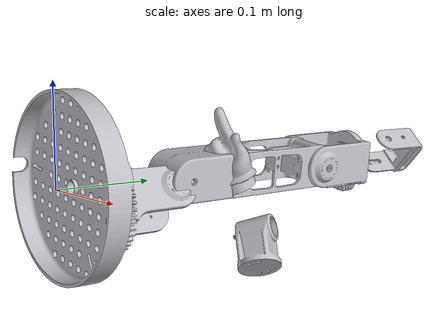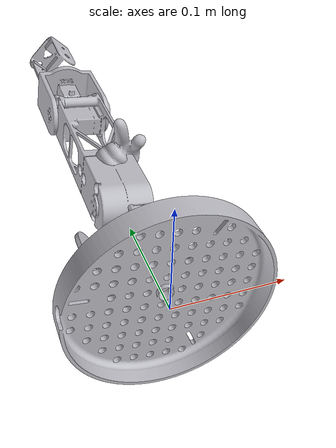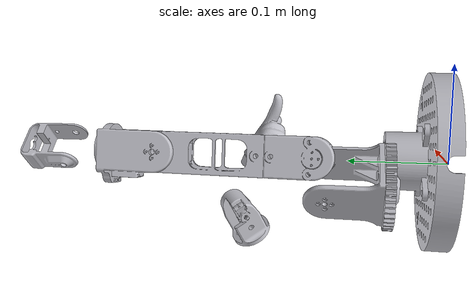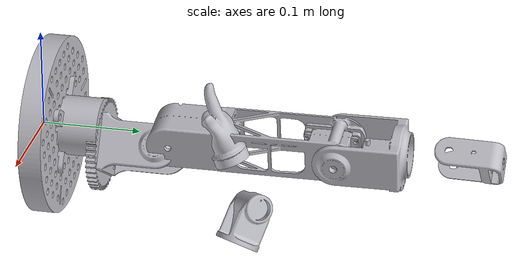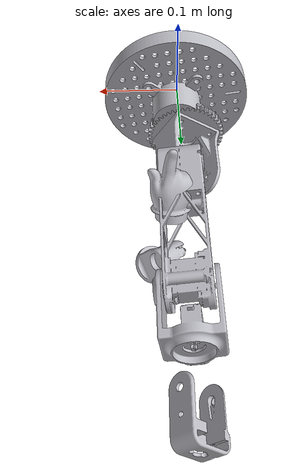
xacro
<?xml version="1.0" ?>
<robot name="manipulator_final_before_export" xmlns:xacro="http://www.ros.org/wiki/xacro">

<xacro:include filename="$(find manipulator_final_before_export_description)/urdf/materials.xacro" />
<xacro:include filename="$(find manipulator_final_before_export_description)/urdf/manipulator_final_before_export.trans" />
<xacro:include filename="$(find manipulator_final_before_export_description)/urdf/manipulator_final_before_export.gazebo" />
<link name="base_link">
  <inertial>
    <origin xyz="-0.00809866433394189 0.014118938459993782 -0.021988491539626703" rpy="0 0 0"/>
    <mass value="0.2582622448652916"/>
    <inertia ixx="0.00044" iyy="0.000759" izz="0.000436" ixy="1e-06" iyz="-0.0" ixz="-1e-06"/>
  </inertial>
  <visual>
    <origin xyz="0 0 0" rpy="0 0 0"/>
    <geometry>
      <mesh filename="package://manipulator_final_before_export_description/meshes/base_link.stl" scale="0.001 0.001 0.001"/>
    </geometry>
    <material name="silver"/>
  </visual>
  <collision>
    <origin xyz="0 0 0" rpy="0 0 0"/>
    <geometry>
      <mesh filename="package://manipulator_final_before_export_description/meshes/base_link.stl" scale="0.001 0.001 0.001"/>
    </geometry>
  </collision>
</link>

<link name="link_1_1">
  <inertial>
    <origin xyz="-0.00030372916817771045 0.023444469305636866 -0.000888222041918782" rpy="0 0 0"/>
    <mass value="0.12358010588813423"/>
    <inertia ixx="0.000133" iyy="0.000114" izz="0.000112" ixy="2e-06" iyz="4e-06" ixz="-8e-06"/>
  </inertial>
  <visual>
    <origin xyz="0.008248 -0.048021 0.021966" rpy="0 0 0"/>
    <geometry>
      <mesh filename="package://manipulator_final_before_export_description/meshes/link_1_1.stl" scale="0.001 0.001 0.001"/>
    </geometry>
    <material name="silver"/>
  </visual>
  <collision>
    <origin xyz="0.008248 -0.048021 0.021966" rpy="0 0 0"/>
    <geometry>
      <mesh filename="package://manipulator_final_before_export_description/meshes/link_1_1.stl" scale="0.001 0.001 0.001"/>
    </geometry>
  </collision>
</link>

<link name="link_2_1">
  <inertial>
    <origin xyz="-0.012618574154527315 0.25545830819375576 -0.10079221316532616" rpy="0 0 0"/>
    <mass value="0.19645503680128024"/>
    <inertia ixx="0.000717" iyy="0.000281" izz="0.00086" ixy="0.000329" iyz="-0.000114" ixz="5.6e-05"/>
  </inertial>
  <visual>
    <origin xyz="0.029209 0.072439 -0.089921" rpy="0 0 0"/>
    <geometry>
      <mesh filename="package://manipulator_final_before_export_description/meshes/link_2_1.stl" scale="0.001 0.001 0.001"/>
    </geometry>
    <material name="silver"/>
  </visual>
  <collision>
    <origin xyz="0.029209 0.072439 -0.089921" rpy="0 0 0"/>
    <geometry>
      <mesh filename="package://manipulator_final_before_export_description/meshes/link_2_1.stl" scale="0.001 0.001 0.001"/>
    </geometry>
  </collision>
</link>

<link name="link_3_1">
  <inertial>
    <origin xyz="-0.21940796026773024 0.16915252958248161 0.33545892673558364" rpy="0 0 0"/>
    <mass value="0.0955140145218663"/>
    <inertia ixx="8.4e-05" iyy="7e-05" izz="7e-05" ixy="1.1e-05" iyz="-7e-06" ixz="-3e-06"/>
  </inertial>
  <visual>
    <origin xyz="-0.112486 -0.132847 0.324432" rpy="0 0 0"/>
    <geometry>
      <mesh filename="package://manipulator_final_before_export_description/meshes/link_3_1.stl" scale="0.001 0.001 0.001"/>
    </geometry>
    <material name="silver"/>
  </visual>
  <collision>
    <origin xyz="-0.112486 -0.132847 0.324432" rpy="0 0 0"/>
    <geometry>
      <mesh filename="package://manipulator_final_before_export_description/meshes/link_3_1.stl" scale="0.001 0.001 0.001"/>
    </geometry>
  </collision>
</link>

<link name="link_4_1">
  <inertial>
    <origin xyz="-0.009283319354633945 0.02082283519260225 0.004748383192233299" rpy="0 0 0"/>
    <mass value="0.03834640881030812"/>
    <inertia ixx="1.2e-05" iyy="8e-06" izz="1.4e-05" ixy="2e-06" iyz="-2e-06" ixz="1e-06"/>
  </inertial>
  <visual>
    <origin xyz="0.11614 -0.332328 -0.015262" rpy="0 0 0"/>
    <geometry>
      <mesh filename="package://manipulator_final_before_export_description/meshes/link_4_1.stl" scale="0.001 0.001 0.001"/>
    </geometry>
    <material name="silver"/>
  </visual>
  <collision>
    <origin xyz="0.11614 -0.332328 -0.015262" rpy="0 0 0"/>
    <geometry>
      <mesh filename="package://manipulator_final_before_export_description/meshes/link_4_1.stl" scale="0.001 0.001 0.001"/>
    </geometry>
  </collision>
</link>

<link name="link_5_1">
  <inertial>
    <origin xyz="-0.02196446975082661 -0.016126281270833986 0.026066527092648523" rpy="0 0 0"/>
    <mass value="0.027850929831273335"/>
    <inertia ixx="1e-05" iyy="1.4e-05" izz="9e-06" ixy="-2e-06" iyz="1e-06" ixz="-1e-06"/>
  </inertial>
  <visual>
    <origin xyz="0.113818 -0.376781 -0.024307" rpy="0 0 0"/>
    <geometry>
      <mesh filename="package://manipulator_final_before_export_description/meshes/link_5_1.stl" scale="0.001 0.001 0.001"/>
    </geometry>
    <material name="silver"/>
  </visual>
  <collision>
    <origin xyz="0.113818 -0.376781 -0.024307" rpy="0 0 0"/>
    <geometry>
      <mesh filename="package://manipulator_final_before_export_description/meshes/link_5_1.stl" scale="0.001 0.001 0.001"/>
    </geometry>
  </collision>
</link>

<link name="efector_1">
  <inertial>
    <origin xyz="-0.0018838254445557034 -0.0069601430591108016 0.027706536201757823" rpy="0 0 0"/>
    <mass value="0.46837075835083564"/>
    <inertia ixx="0.000177" iyy="0.000199" izz="9.6e-05" ixy="-1.1e-05" iyz="2.3e-05" ixz="-3e-06"/>
  </inertial>
  <visual>
    <origin xyz="0.134282 -0.355442 -0.071754" rpy="0 0 0"/>
    <geometry>
      <mesh filename="package://manipulator_final_before_export_description/meshes/efector_1.stl" scale="0.001 0.001 0.001"/>
    </geometry>
    <material name="silver"/>
  </visual>
  <collision>
    <origin xyz="0.134282 -0.355442 -0.071754" rpy="0 0 0"/>
    <geometry>
      <mesh filename="package://manipulator_final_before_export_description/meshes/efector_1.stl" scale="0.001 0.001 0.001"/>
    </geometry>
  </collision>
</link>

<joint name="base_to_1" type="continuous">
  <origin xyz="-0.008248 0.048021 -0.021966" rpy="0 0 0"/>
  <parent link="base_link"/>
  <child link="link_1_1"/>
  <axis xyz="0.0 1.0 0.0"/>
</joint>

<joint name="1_to_2" type="continuous">
  <origin xyz="-0.020961 -0.12046 0.111887" rpy="0 0 0"/>
  <parent link="link_1_1"/>
  <child link="link_2_1"/>
  <axis xyz="0.330603 -0.0 0.94377"/>
</joint>

<joint name="2_to_3" type="continuous">
  <origin xyz="0.141695 0.205286 -0.414353" rpy="0 0 0"/>
  <parent link="link_2_1"/>
  <child link="link_3_1"/>
  <axis xyz="0.330603 0.0 0.94377"/>
</joint>

<joint name="3_to_4" type="continuous">
  <origin xyz="-0.228626 0.199481 0.339694" rpy="0 0 0"/>
  <parent link="link_3_1"/>
  <child link="link_4_1"/>
  <axis xyz="0.407084 -0.90219 -0.142602"/>
</joint>

<joint name="4_to_5" type="continuous">
  <origin xyz="0.002322 0.044453 0.009045" rpy="0 0 0"/>
  <parent link="link_4_1"/>
  <child link="link_5_1"/>
  <axis xyz="0.90913 0.385154 0.158554"/>
</joint>

<joint name="Revolute 7" type="continuous">
  <origin xyz="-0.020464 -0.021339 0.047447" rpy="0 0 0"/>
  <parent link="link_5_1"/>
  <child link="efector_1"/>
  <axis xyz="0.057175 0.261665 -0.963464"/>
</joint>

</robot>
